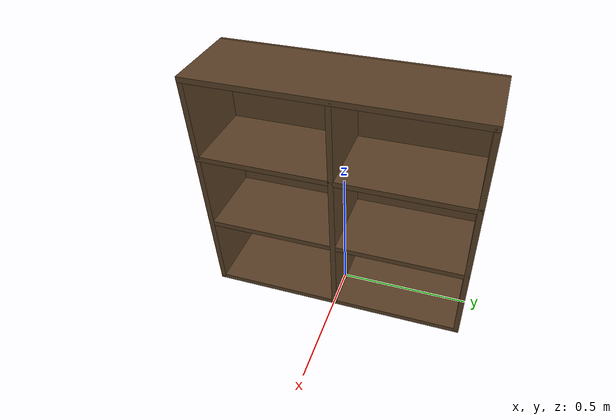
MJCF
<mujoco model="bookshelf_base_thick">
  <compiler angle="radian"/>

  <asset>
    <texture type="2d" name="light_wood_base" file="light_wood_v3.png" />
    <material name="wood_mat_base" texture="light_wood_base" specular="0.5" shininess="0.5" rgba="0.5 0.5 0.5 1" />
  </asset>

  <worldbody>
    <body name="body_bookshelf_base_thick" pos="0 0 0">
      <geom type="box" size="0.01 0.5 0.46" pos="-0.15 0.0 0.45" material="wood_mat_base" />

      <geom type="box" size="0.15 0.5 0.01" pos="0.0 0.0 0.0" material="wood_mat_base" />
      <geom type="box" size="0.15 0.5 0.01" pos="0.0 0.0 0.3" material="wood_mat_base" />
      <geom type="box" size="0.15 0.5 0.01" pos="0.0 0.0 0.6" material="wood_mat_base" />
      <geom type="box" size="0.15 0.5 0.01" pos="0.0 0.0 0.9" material="wood_mat_base" />
      <geom type="box" size="0.15 0.01 0.45" pos="0.0 0.49 0.45" material="wood_mat_base" />
      <geom type="box" size="0.15 0.01 0.45" pos="0.0 -0.49 0.45" material="wood_mat_base" />
      <geom type="box" size="0.15 0.01 0.45" pos="0.0 0.0 0.45" material="wood_mat_base" />

    </body>
  </worldbody>

</mujoco>
